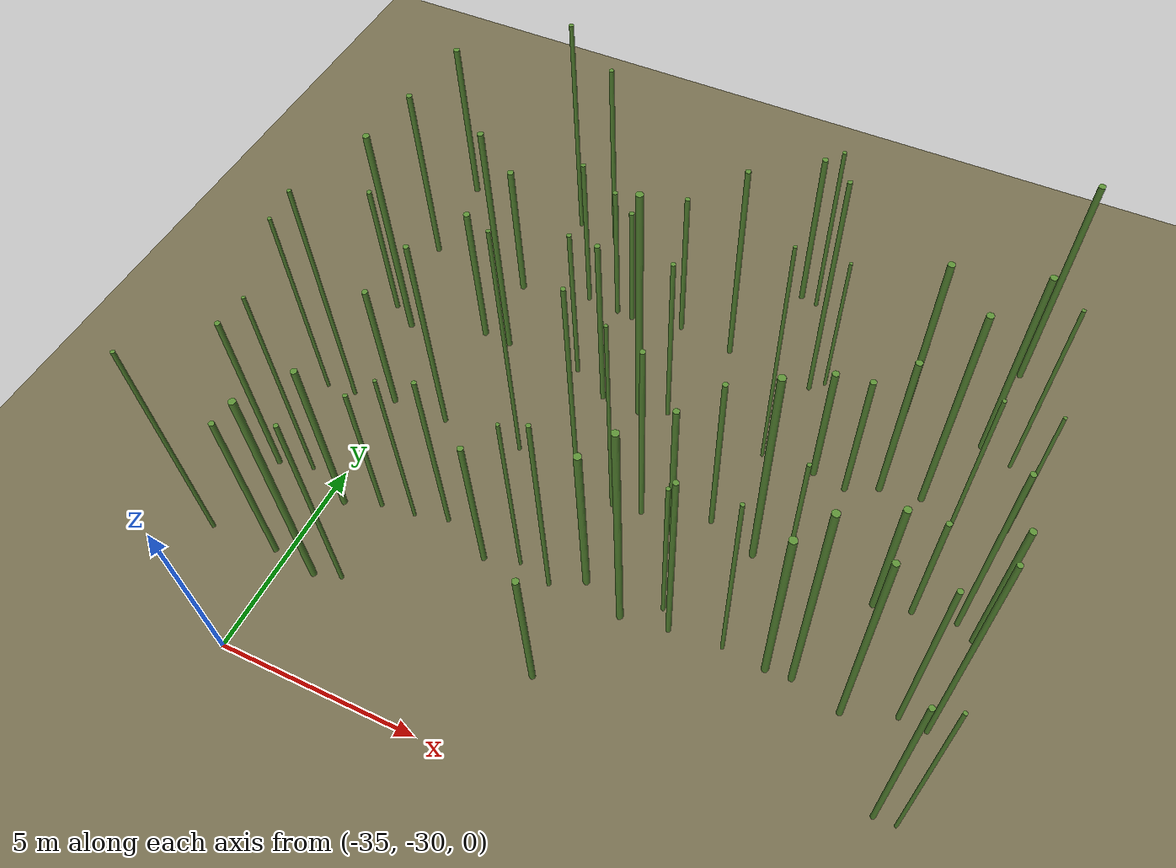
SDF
<sdf version="1.9">
 <world name="bamboo_field">
  <model name="ground_plane">
   <static>true</static>
   <link name="link">
    <collision name="collision">
     <geometry><plane><normal>0 0 1</normal><size>80.0 80.0</size></plane></geometry>
    </collision>
    <visual name="visual">
     <geometry><plane><normal>0 0 1</normal><size>80.0 80.0</size></plane></geometry>
     <material><diffuse>0.45 0.42 0.30 1</diffuse></material>
    </visual>
   </link>
  </model>
  <model name="bamboo_269">
   <static>true</static>
   <pose>-37.062735813474106 -27.58583185688729 3.381000521837051 0 0 0</pose>
   <link name="link">
    <collision name="collision">
     <geometry>
      <cylinder><radius>0.04757156290596727</radius><length>6.762001043674102</length></cylinder>
     </geometry>
    </collision>
    <visual name="visual">
     <geometry>
      <cylinder><radius>0.04757156290596727</radius><length>6.762001043674102</length></cylinder>
     </geometry>
     <material><diffuse>0.35 0.55 0.20 1</diffuse><specular>0.1 0.1 0.1 1</specular></material>
    </visual>
   </link>
  </model>
  <model name="bamboo_271">
   <static>true</static>
   <pose>-35.33054410957057 -27.489825555505444 2.6275051974756343 0 0 0</pose>
   <link name="link">
    <collision name="collision">
     <geometry>
      <cylinder><radius>0.06627385757000176</radius><length>5.2550103949512685</length></cylinder>
     </geometry>
    </collision>
    <visual name="visual">
     <geometry>
      <cylinder><radius>0.06627385757000176</radius><length>5.2550103949512685</length></cylinder>
     </geometry>
     <material><diffuse>0.35 0.55 0.20 1</diffuse><specular>0.1 0.1 0.1 1</specular></material>
    </visual>
   </link>
  </model>
  <model name="bamboo_272">
   <static>true</static>
   <pose>-34.16452462919833 -27.642993151131375 3.4418491226545855 0 0 0</pose>
   <link name="link">
    <collision name="collision">
     <geometry>
      <cylinder><radius>0.07859948920743703</radius><length>6.883698245309171</length></cylinder>
     </geometry>
    </collision>
    <visual name="visual">
     <geometry>
      <cylinder><radius>0.07859948920743703</radius><length>6.883698245309171</length></cylinder>
     </geometry>
     <material><diffuse>0.35 0.55 0.20 1</diffuse><specular>0.1 0.1 0.1 1</specular></material>
    </visual>
   </link>
  </model>
  <model name="bamboo_273">
   <static>true</static>
   <pose>-33.51340344057149 -27.447275028838853 3.1161733016148085 0 0 0</pose>
   <link name="link">
    <collision name="collision">
     <geometry>
      <cylinder><radius>0.05232595677636802</radius><length>6.232346603229617</length></cylinder>
     </geometry>
    </collision>
    <visual name="visual">
     <geometry>
      <cylinder><radius>0.05232595677636802</radius><length>6.232346603229617</length></cylinder>
     </geometry>
     <material><diffuse>0.35 0.55 0.20 1</diffuse><specular>0.1 0.1 0.1 1</specular></material>
    </visual>
   </link>
  </model>
  <model name="bamboo_278">
   <static>true</static>
   <pose>-28.35415856764586 -27.71753111915268 2.274545909601846 0 0 0</pose>
   <link name="link">
    <collision name="collision">
     <geometry>
      <cylinder><radius>0.07480856503234112</radius><length>4.549091819203692</length></cylinder>
     </geometry>
    </collision>
    <visual name="visual">
     <geometry>
      <cylinder><radius>0.07480856503234112</radius><length>4.549091819203692</length></cylinder>
     </geometry>
     <material><diffuse>0.35 0.55 0.20 1</diffuse><specular>0.1 0.1 0.1 1</specular></material>
    </visual>
   </link>
  </model>
  <model name="bamboo_283">
   <static>true</static>
   <pose>-20.586944837832704 -27.454820502093913 2.9907677946435154 0 0 0</pose>
   <link name="link">
    <collision name="collision">
     <geometry>
      <cylinder><radius>0.05984972871391498</radius><length>5.981535589287031</length></cylinder>
     </geometry>
    </collision>
    <visual name="visual">
     <geometry>
      <cylinder><radius>0.05984972871391498</radius><length>5.981535589287031</length></cylinder>
     </geometry>
     <material><diffuse>0.35 0.55 0.20 1</diffuse><specular>0.1 0.1 0.1 1</specular></material>
    </visual>
   </link>
  </model>
  <model name="bamboo_284">
   <static>true</static>
   <pose>-20.097044596477083 -27.440216746292545 3.1359237373289908 0 0 0</pose>
   <link name="link">
    <collision name="collision">
     <geometry>
      <cylinder><radius>0.04046335842400499</radius><length>6.2718474746579815</length></cylinder>
     </geometry>
    </collision>
    <visual name="visual">
     <geometry>
      <cylinder><radius>0.04046335842400499</radius><length>6.2718474746579815</length></cylinder>
     </geometry>
     <material><diffuse>0.35 0.55 0.20 1</diffuse><specular>0.1 0.1 0.1 1</specular></material>
    </visual>
   </link>
  </model>
  <model name="bamboo_343">
   <static>true</static>
   <pose>-36.69120000852049 -25.404731781519725 2.7116223954116956 0 0 0</pose>
   <link name="link">
    <collision name="collision">
     <geometry>
      <cylinder><radius>0.06453017280553966</radius><length>5.423244790823391</length></cylinder>
     </geometry>
    </collision>
    <visual name="visual">
     <geometry>
      <cylinder><radius>0.06453017280553966</radius><length>5.423244790823391</length></cylinder>
     </geometry>
     <material><diffuse>0.35 0.55 0.20 1</diffuse><specular>0.1 0.1 0.1 1</specular></material>
    </visual>
   </link>
  </model>
  <model name="bamboo_344">
   <static>true</static>
   <pose>-35.81948343510281 -25.20784937101254 3.2372317805197754 0 0 0</pose>
   <link name="link">
    <collision name="collision">
     <geometry>
      <cylinder><radius>0.044284705881836785</radius><length>6.474463561039551</length></cylinder>
     </geometry>
    </collision>
    <visual name="visual">
     <geometry>
      <cylinder><radius>0.044284705881836785</radius><length>6.474463561039551</length></cylinder>
     </geometry>
     <material><diffuse>0.35 0.55 0.20 1</diffuse><specular>0.1 0.1 0.1 1</specular></material>
    </visual>
   </link>
  </model>
  <model name="bamboo_345">
   <static>true</static>
   <pose>-34.58605034858615 -25.703388688228387 2.6333564573630723 0 0 0</pose>
   <link name="link">
    <collision name="collision">
     <geometry>
      <cylinder><radius>0.07698276444882973</radius><length>5.266712914726145</length></cylinder>
     </geometry>
    </collision>
    <visual name="visual">
     <geometry>
      <cylinder><radius>0.07698276444882973</radius><length>5.266712914726145</length></cylinder>
     </geometry>
     <material><diffuse>0.35 0.55 0.20 1</diffuse><specular>0.1 0.1 0.1 1</specular></material>
    </visual>
   </link>
  </model>
  <model name="bamboo_346">
   <static>true</static>
   <pose>-33.70615476046 -25.392834769972392 2.2650140089883988 0 0 0</pose>
   <link name="link">
    <collision name="collision">
     <geometry>
      <cylinder><radius>0.053488322161969325</radius><length>4.5300280179767975</length></cylinder>
     </geometry>
    </collision>
    <visual name="visual">
     <geometry>
      <cylinder><radius>0.053488322161969325</radius><length>4.5300280179767975</length></cylinder>
     </geometry>
     <material><diffuse>0.35 0.55 0.20 1</diffuse><specular>0.1 0.1 0.1 1</specular></material>
    </visual>
   </link>
  </model>
  <model name="bamboo_347">
   <static>true</static>
   <pose>-32.850288026364055 -25.288394685431417 2.7078285746905175 0 0 0</pose>
   <link name="link">
    <collision name="collision">
     <geometry>
      <cylinder><radius>0.04131309520066486</radius><length>5.415657149381035</length></cylinder>
     </geometry>
    </collision>
    <visual name="visual">
     <geometry>
      <cylinder><radius>0.04131309520066486</radius><length>5.415657149381035</length></cylinder>
     </geometry>
     <material><diffuse>0.35 0.55 0.20 1</diffuse><specular>0.1 0.1 0.1 1</specular></material>
    </visual>
   </link>
  </model>
  <model name="bamboo_348">
   <static>true</static>
   <pose>-32.02637121460703 -25.076230112487906 2.775599118756787 0 0 0</pose>
   <link name="link">
    <collision name="collision">
     <geometry>
      <cylinder><radius>0.05459236756481605</radius><length>5.551198237513574</length></cylinder>
     </geometry>
    </collision>
    <visual name="visual">
     <geometry>
      <cylinder><radius>0.05459236756481605</radius><length>5.551198237513574</length></cylinder>
     </geometry>
     <material><diffuse>0.35 0.55 0.20 1</diffuse><specular>0.1 0.1 0.1 1</specular></material>
    </visual>
   </link>
  </model>
  <model name="bamboo_349">
   <static>true</static>
   <pose>-30.757065430289536 -25.609837302615816 2.339165846784651 0 0 0</pose>
   <link name="link">
    <collision name="collision">
     <geometry>
      <cylinder><radius>0.06859802153747697</radius><length>4.678331693569302</length></cylinder>
     </geometry>
    </collision>
    <visual name="visual">
     <geometry>
      <cylinder><radius>0.06859802153747697</radius><length>4.678331693569302</length></cylinder>
     </geometry>
     <material><diffuse>0.35 0.55 0.20 1</diffuse><specular>0.1 0.1 0.1 1</specular></material>
    </visual>
   </link>
  </model>
  <model name="bamboo_350">
   <static>true</static>
   <pose>-29.908353702740865 -25.36806342413366 2.86935253852549 0 0 0</pose>
   <link name="link">
    <collision name="collision">
     <geometry>
      <cylinder><radius>0.04316335751384772</radius><length>5.73870507705098</length></cylinder>
     </geometry>
    </collision>
    <visual name="visual">
     <geometry>
      <cylinder><radius>0.04316335751384772</radius><length>5.73870507705098</length></cylinder>
     </geometry>
     <material><diffuse>0.35 0.55 0.20 1</diffuse><specular>0.1 0.1 0.1 1</specular></material>
    </visual>
   </link>
  </model>
  <model name="bamboo_351">
   <static>true</static>
   <pose>-29.056692317396212 -25.570141586471227 3.2500673755377893 0 0 0</pose>
   <link name="link">
    <collision name="collision">
     <geometry>
      <cylinder><radius>0.05232950341735015</radius><length>6.500134751075579</length></cylinder>
     </geometry>
    </collision>
    <visual name="visual">
     <geometry>
      <cylinder><radius>0.05232950341735015</radius><length>6.500134751075579</length></cylinder>
     </geometry>
     <material><diffuse>0.35 0.55 0.20 1</diffuse><specular>0.1 0.1 0.1 1</specular></material>
    </visual>
   </link>
  </model>
  <model name="bamboo_352">
   <static>true</static>
   <pose>-28.295433317478924 -25.14417182051724 2.664434430623254 0 0 0</pose>
   <link name="link">
    <collision name="collision">
     <geometry>
      <cylinder><radius>0.08744117311972825</radius><length>5.328868861246508</length></cylinder>
     </geometry>
    </collision>
    <visual name="visual">
     <geometry>
      <cylinder><radius>0.08744117311972825</radius><length>5.328868861246508</length></cylinder>
     </geometry>
     <material><diffuse>0.35 0.55 0.20 1</diffuse><specular>0.1 0.1 0.1 1</specular></material>
    </visual>
   </link>
  </model>
  <model name="bamboo_353">
   <static>true</static>
   <pose>-27.21579339892628 -25.611738213782623 3.7190169342016706 0 0 0</pose>
   <link name="link">
    <collision name="collision">
     <geometry>
      <cylinder><radius>0.08077377350015016</radius><length>7.438033868403341</length></cylinder>
     </geometry>
    </collision>
    <visual name="visual">
     <geometry>
      <cylinder><radius>0.08077377350015016</radius><length>7.438033868403341</length></cylinder>
     </geometry>
     <material><diffuse>0.35 0.55 0.20 1</diffuse><specular>0.1 0.1 0.1 1</specular></material>
    </visual>
   </link>
  </model>
  <model name="bamboo_354">
   <static>true</static>
   <pose>-26.394282864163113 -25.02891768866472 2.628366562390883 0 0 0</pose>
   <link name="link">
    <collision name="collision">
     <geometry>
      <cylinder><radius>0.050042574435103584</radius><length>5.256733124781766</length></cylinder>
     </geometry>
    </collision>
    <visual name="visual">
     <geometry>
      <cylinder><radius>0.050042574435103584</radius><length>5.256733124781766</length></cylinder>
     </geometry>
     <material><diffuse>0.35 0.55 0.20 1</diffuse><specular>0.1 0.1 0.1 1</specular></material>
    </visual>
   </link>
  </model>
  <model name="bamboo_355">
   <static>true</static>
   <pose>-26.083208831951044 -25.443786632260505 3.1517585632499214 0 0 0</pose>
   <link name="link">
    <collision name="collision">
     <geometry>
      <cylinder><radius>0.06455036564460512</radius><length>6.303517126499843</length></cylinder>
     </geometry>
    </collision>
    <visual name="visual">
     <geometry>
      <cylinder><radius>0.06455036564460512</radius><length>6.303517126499843</length></cylinder>
     </geometry>
     <material><diffuse>0.35 0.55 0.20 1</diffuse><specular>0.1 0.1 0.1 1</specular></material>
    </visual>
   </link>
  </model>
  <model name="bamboo_356">
   <static>true</static>
   <pose>-24.811749109549012 -25.325084984071832 3.127701017257572 0 0 0</pose>
   <link name="link">
    <collision name="collision">
     <geometry>
      <cylinder><radius>0.045694391180599904</radius><length>6.255402034515144</length></cylinder>
     </geometry>
    </collision>
    <visual name="visual">
     <geometry>
      <cylinder><radius>0.045694391180599904</radius><length>6.255402034515144</length></cylinder>
     </geometry>
     <material><diffuse>0.35 0.55 0.20 1</diffuse><specular>0.1 0.1 0.1 1</specular></material>
    </visual>
   </link>
  </model>
  <model name="bamboo_357">
   <static>true</static>
   <pose>-23.757766044393 -25.40010687587117 2.923244445666297 0 0 0</pose>
   <link name="link">
    <collision name="collision">
     <geometry>
      <cylinder><radius>0.0876502305743148</radius><length>5.846488891332594</length></cylinder>
     </geometry>
    </collision>
    <visual name="visual">
     <geometry>
      <cylinder><radius>0.0876502305743148</radius><length>5.846488891332594</length></cylinder>
     </geometry>
     <material><diffuse>0.35 0.55 0.20 1</diffuse><specular>0.1 0.1 0.1 1</specular></material>
    </visual>
   </link>
  </model>
  <model name="bamboo_358">
   <static>true</static>
   <pose>-23.1506913839067 -25.357513093185137 3.5913136719919088 0 0 0</pose>
   <link name="link">
    <collision name="collision">
     <geometry>
      <cylinder><radius>0.08094827840022292</radius><length>7.1826273439838175</length></cylinder>
     </geometry>
    </collision>
    <visual name="visual">
     <geometry>
      <cylinder><radius>0.08094827840022292</radius><length>7.1826273439838175</length></cylinder>
     </geometry>
     <material><diffuse>0.35 0.55 0.20 1</diffuse><specular>0.1 0.1 0.1 1</specular></material>
    </visual>
   </link>
  </model>
  <model name="bamboo_359">
   <static>true</static>
   <pose>-21.93140234696262 -25.655249748979806 3.4304727825988524 0 0 0</pose>
   <link name="link">
    <collision name="collision">
     <geometry>
      <cylinder><radius>0.07293314842661591</radius><length>6.860945565197705</length></cylinder>
     </geometry>
    </collision>
    <visual name="visual">
     <geometry>
      <cylinder><radius>0.07293314842661591</radius><length>6.860945565197705</length></cylinder>
     </geometry>
     <material><diffuse>0.35 0.55 0.20 1</diffuse><specular>0.1 0.1 0.1 1</specular></material>
    </visual>
   </link>
  </model>
  <model name="bamboo_360">
   <static>true</static>
   <pose>-20.743201306307068 -25.222829137758733 3.013225286059018 0 0 0</pose>
   <link name="link">
    <collision name="collision">
     <geometry>
      <cylinder><radius>0.06004025486646868</radius><length>6.026450572118036</length></cylinder>
     </geometry>
    </collision>
    <visual name="visual">
     <geometry>
      <cylinder><radius>0.06004025486646868</radius><length>6.026450572118036</length></cylinder>
     </geometry>
     <material><diffuse>0.35 0.55 0.20 1</diffuse><specular>0.1 0.1 0.1 1</specular></material>
    </visual>
   </link>
  </model>
  <model name="bamboo_361">
   <static>true</static>
   <pose>-20.094183563869674 -25.26029908697982 3.7910030307217983 0 0 0</pose>
   <link name="link">
    <collision name="collision">
     <geometry>
      <cylinder><radius>0.057976474650812994</radius><length>7.582006061443597</length></cylinder>
     </geometry>
    </collision>
    <visual name="visual">
     <geometry>
      <cylinder><radius>0.057976474650812994</radius><length>7.582006061443597</length></cylinder>
     </geometry>
     <material><diffuse>0.35 0.55 0.20 1</diffuse><specular>0.1 0.1 0.1 1</specular></material>
    </visual>
   </link>
  </model>
  <model name="bamboo_412">
   <static>true</static>
   <pose>-36.91876706103328 -22.898484576971686 3.0731296321400308 0 0 0</pose>
   <link name="link">
    <collision name="collision">
     <geometry>
      <cylinder><radius>0.044121390596232296</radius><length>6.1462592642800615</length></cylinder>
     </geometry>
    </collision>
    <visual name="visual">
     <geometry>
      <cylinder><radius>0.044121390596232296</radius><length>6.1462592642800615</length></cylinder>
     </geometry>
     <material><diffuse>0.35 0.55 0.20 1</diffuse><specular>0.1 0.1 0.1 1</specular></material>
    </visual>
   </link>
  </model>
  <model name="bamboo_413">
   <static>true</static>
   <pose>-36.15056412473072 -22.819199939908035 3.6161201619413066 0 0 0</pose>
   <link name="link">
    <collision name="collision">
     <geometry>
      <cylinder><radius>0.05015987469789139</radius><length>7.232240323882613</length></cylinder>
     </geometry>
    </collision>
    <visual name="visual">
     <geometry>
      <cylinder><radius>0.05015987469789139</radius><length>7.232240323882613</length></cylinder>
     </geometry>
     <material><diffuse>0.35 0.55 0.20 1</diffuse><specular>0.1 0.1 0.1 1</specular></material>
    </visual>
   </link>
  </model>
  <model name="bamboo_414">
   <static>true</static>
   <pose>-35.083246429688195 -22.5817411277838 2.13223016724243 0 0 0</pose>
   <link name="link">
    <collision name="collision">
     <geometry>
      <cylinder><radius>0.07405278423546052</radius><length>4.26446033448486</length></cylinder>
     </geometry>
    </collision>
    <visual name="visual">
     <geometry>
      <cylinder><radius>0.07405278423546052</radius><length>4.26446033448486</length></cylinder>
     </geometry>
     <material><diffuse>0.35 0.55 0.20 1</diffuse><specular>0.1 0.1 0.1 1</specular></material>
    </visual>
   </link>
  </model>
  <model name="bamboo_415">
   <static>true</static>
   <pose>-33.58274413668766 -22.57352653564559 3.217664808854887 0 0 0</pose>
   <link name="link">
    <collision name="collision">
     <geometry>
      <cylinder><radius>0.06266859211485713</radius><length>6.435329617709774</length></cylinder>
     </geometry>
    </collision>
    <visual name="visual">
     <geometry>
      <cylinder><radius>0.06266859211485713</radius><length>6.435329617709774</length></cylinder>
     </geometry>
     <material><diffuse>0.35 0.55 0.20 1</diffuse><specular>0.1 0.1 0.1 1</specular></material>
    </visual>
   </link>
  </model>
  <model name="bamboo_416">
   <static>true</static>
   <pose>-31.453719912548333 -22.544621020905257 3.9060324035093954 0 0 0</pose>
   <link name="link">
    <collision name="collision">
     <geometry>
      <cylinder><radius>0.04819163154677038</radius><length>7.812064807018791</length></cylinder>
     </geometry>
    </collision>
    <visual name="visual">
     <geometry>
      <cylinder><radius>0.04819163154677038</radius><length>7.812064807018791</length></cylinder>
     </geometry>
     <material><diffuse>0.35 0.55 0.20 1</diffuse><specular>0.1 0.1 0.1 1</specular></material>
    </visual>
   </link>
  </model>
  <model name="bamboo_417">
   <static>true</static>
   <pose>-29.540744012885646 -23.072162616164917 3.772829519481312 0 0 0</pose>
   <link name="link">
    <collision name="collision">
     <geometry>
      <cylinder><radius>0.05343822432046228</radius><length>7.545659038962624</length></cylinder>
     </geometry>
    </collision>
    <visual name="visual">
     <geometry>
      <cylinder><radius>0.05343822432046228</radius><length>7.545659038962624</length></cylinder>
     </geometry>
     <material><diffuse>0.35 0.55 0.20 1</diffuse><specular>0.1 0.1 0.1 1</specular></material>
    </visual>
   </link>
  </model>
  <model name="bamboo_418">
   <static>true</static>
   <pose>-28.65424590526551 -23.038762970085408 3.4246464964009906 0 0 0</pose>
   <link name="link">
    <collision name="collision">
     <geometry>
      <cylinder><radius>0.0431935994561574</radius><length>6.849292992801981</length></cylinder>
     </geometry>
    </collision>
    <visual name="visual">
     <geometry>
      <cylinder><radius>0.0431935994561574</radius><length>6.849292992801981</length></cylinder>
     </geometry>
     <material><diffuse>0.35 0.55 0.20 1</diffuse><specular>0.1 0.1 0.1 1</specular></material>
    </visual>
   </link>
  </model>
  <model name="bamboo_419">
   <static>true</static>
   <pose>-27.918441521993895 -22.914130735258524 3.1337722564768997 0 0 0</pose>
   <link name="link">
    <collision name="collision">
     <geometry>
      <cylinder><radius>0.06498050028806916</radius><length>6.267544512953799</length></cylinder>
     </geometry>
    </collision>
    <visual name="visual">
     <geometry>
      <cylinder><radius>0.06498050028806916</radius><length>6.267544512953799</length></cylinder>
     </geometry>
     <material><diffuse>0.35 0.55 0.20 1</diffuse><specular>0.1 0.1 0.1 1</specular></material>
    </visual>
   </link>
  </model>
  <model name="bamboo_420">
   <static>true</static>
   <pose>-27.078483581047465 -23.061885456901912 2.456808846306502 0 0 0</pose>
   <link name="link">
    <collision name="collision">
     <geometry>
      <cylinder><radius>0.07613891866629333</radius><length>4.913617692613004</length></cylinder>
     </geometry>
    </collision>
    <visual name="visual">
     <geometry>
      <cylinder><radius>0.07613891866629333</radius><length>4.913617692613004</length></cylinder>
     </geometry>
     <material><diffuse>0.35 0.55 0.20 1</diffuse><specular>0.1 0.1 0.1 1</specular></material>
    </visual>
   </link>
  </model>
  <model name="bamboo_421">
   <static>true</static>
   <pose>-26.28443033475507 -22.44089993797585 2.765958948734798 0 0 0</pose>
   <link name="link">
    <collision name="collision">
     <geometry>
      <cylinder><radius>0.0635882294788869</radius><length>5.531917897469596</length></cylinder>
     </geometry>
    </collision>
    <visual name="visual">
     <geometry>
      <cylinder><radius>0.0635882294788869</radius><length>5.531917897469596</length></cylinder>
     </geometry>
     <material><diffuse>0.35 0.55 0.20 1</diffuse><specular>0.1 0.1 0.1 1</specular></material>
    </visual>
   </link>
  </model>
  <model name="bamboo_422">
   <static>true</static>
   <pose>-25.052937010370727 -22.867450581855437 3.481331656213154 0 0 0</pose>
   <link name="link">
    <collision name="collision">
     <geometry>
      <cylinder><radius>0.08569738347605645</radius><length>6.962663312426308</length></cylinder>
     </geometry>
    </collision>
    <visual name="visual">
     <geometry>
      <cylinder><radius>0.08569738347605645</radius><length>6.962663312426308</length></cylinder>
     </geometry>
     <material><diffuse>0.35 0.55 0.20 1</diffuse><specular>0.1 0.1 0.1 1</specular></material>
    </visual>
   </link>
  </model>
  <model name="bamboo_423">
   <static>true</static>
   <pose>-24.219027167307654 -22.741283332194172 2.1557741399338237 0 0 0</pose>
   <link name="link">
    <collision name="collision">
     <geometry>
      <cylinder><radius>0.05356289790049083</radius><length>4.311548279867647</length></cylinder>
     </geometry>
    </collision>
    <visual name="visual">
     <geometry>
      <cylinder><radius>0.05356289790049083</radius><length>4.311548279867647</length></cylinder>
     </geometry>
     <material><diffuse>0.35 0.55 0.20 1</diffuse><specular>0.1 0.1 0.1 1</specular></material>
    </visual>
   </link>
  </model>
  <model name="bamboo_424">
   <static>true</static>
   <pose>-22.071915347995528 -22.895097182551247 2.13785287554549 0 0 0</pose>
   <link name="link">
    <collision name="collision">
     <geometry>
      <cylinder><radius>0.08770397037302138</radius><length>4.27570575109098</length></cylinder>
     </geometry>
    </collision>
    <visual name="visual">
     <geometry>
      <cylinder><radius>0.08770397037302138</radius><length>4.27570575109098</length></cylinder>
     </geometry>
     <material><diffuse>0.35 0.55 0.20 1</diffuse><specular>0.1 0.1 0.1 1</specular></material>
    </visual>
   </link>
  </model>
  <model name="bamboo_425">
   <static>true</static>
   <pose>-21.219072863415747 -22.698047273408946 2.0159383471149113 0 0 0</pose>
   <link name="link">
    <collision name="collision">
     <geometry>
      <cylinder><radius>0.06765456976620338</radius><length>4.0318766942298225</length></cylinder>
     </geometry>
    </collision>
    <visual name="visual">
     <geometry>
      <cylinder><radius>0.06765456976620338</radius><length>4.0318766942298225</length></cylinder>
     </geometry>
     <material><diffuse>0.35 0.55 0.20 1</diffuse><specular>0.1 0.1 0.1 1</specular></material>
    </visual>
   </link>
  </model>
  <model name="bamboo_426">
   <static>true</static>
   <pose>-20.192626474827165 -22.551882707920512 3.183381869969632 0 0 0</pose>
   <link name="link">
    <collision name="collision">
     <geometry>
      <cylinder><radius>0.06319633452902496</radius><length>6.366763739939264</length></cylinder>
     </geometry>
    </collision>
    <visual name="visual">
     <geometry>
      <cylinder><radius>0.06319633452902496</radius><length>6.366763739939264</length></cylinder>
     </geometry>
     <material><diffuse>0.35 0.55 0.20 1</diffuse><specular>0.1 0.1 0.1 1</specular></material>
    </visual>
   </link>
  </model>
  <model name="bamboo_427">
   <static>true</static>
   <pose>-19.75534546045019 -22.805686715289664 2.4902537487531657 0 0 0</pose>
   <link name="link">
    <collision name="collision">
     <geometry>
      <cylinder><radius>0.07802411101608484</radius><length>4.9805074975063315</length></cylinder>
     </geometry>
    </collision>
    <visual name="visual">
     <geometry>
      <cylinder><radius>0.07802411101608484</radius><length>4.9805074975063315</length></cylinder>
     </geometry>
     <material><diffuse>0.35 0.55 0.20 1</diffuse><specular>0.1 0.1 0.1 1</specular></material>
    </visual>
   </link>
  </model>
  <model name="bamboo_478">
   <static>true</static>
   <pose>-36.71805595906259 -19.825047679374077 2.1579100995481664 0 0 0</pose>
   <link name="link">
    <collision name="collision">
     <geometry>
      <cylinder><radius>0.06381311405407343</radius><length>4.315820199096333</length></cylinder>
     </geometry>
    </collision>
    <visual name="visual">
     <geometry>
      <cylinder><radius>0.06381311405407343</radius><length>4.315820199096333</length></cylinder>
     </geometry>
     <material><diffuse>0.35 0.55 0.20 1</diffuse><specular>0.1 0.1 0.1 1</specular></material>
    </visual>
   </link>
  </model>
  <model name="bamboo_479">
   <static>true</static>
   <pose>-36.01496823182924 -20.240864356436525 3.3550697711520607 0 0 0</pose>
   <link name="link">
    <collision name="collision">
     <geometry>
      <cylinder><radius>0.08002251683603429</radius><length>6.7101395423041215</length></cylinder>
     </geometry>
    </collision>
    <visual name="visual">
     <geometry>
      <cylinder><radius>0.08002251683603429</radius><length>6.7101395423041215</length></cylinder>
     </geometry>
     <material><diffuse>0.35 0.55 0.20 1</diffuse><specular>0.1 0.1 0.1 1</specular></material>
    </visual>
   </link>
  </model>
  <model name="bamboo_480">
   <static>true</static>
   <pose>-34.05617428399751 -19.633265713329486 2.2523719972770797 0 0 0</pose>
   <link name="link">
    <collision name="collision">
     <geometry>
      <cylinder><radius>0.08042303606596815</radius><length>4.504743994554159</length></cylinder>
     </geometry>
    </collision>
    <visual name="visual">
     <geometry>
      <cylinder><radius>0.08042303606596815</radius><length>4.504743994554159</length></cylinder>
     </geometry>
     <material><diffuse>0.35 0.55 0.20 1</diffuse><specular>0.1 0.1 0.1 1</specular></material>
    </visual>
   </link>
  </model>
  <model name="bamboo_481">
   <static>true</static>
   <pose>-33.29785896331398 -19.687498528753213 3.6682162373520084 0 0 0</pose>
   <link name="link">
    <collision name="collision">
     <geometry>
      <cylinder><radius>0.07136131061161989</radius><length>7.336432474704017</length></cylinder>
     </geometry>
    </collision>
    <visual name="visual">
     <geometry>
      <cylinder><radius>0.07136131061161989</radius><length>7.336432474704017</length></cylinder>
     </geometry>
     <material><diffuse>0.35 0.55 0.20 1</diffuse><specular>0.1 0.1 0.1 1</specular></material>
    </visual>
   </link>
  </model>
  <model name="bamboo_482">
   <static>true</static>
   <pose>-31.23676015255426 -19.713635291404398 2.552401639814499 0 0 0</pose>
   <link name="link">
    <collision name="collision">
     <geometry>
      <cylinder><radius>0.0563063402684868</radius><length>5.104803279628998</length></cylinder>
     </geometry>
    </collision>
    <visual name="visual">
     <geometry>
      <cylinder><radius>0.0563063402684868</radius><length>5.104803279628998</length></cylinder>
     </geometry>
     <material><diffuse>0.35 0.55 0.20 1</diffuse><specular>0.1 0.1 0.1 1</specular></material>
    </visual>
   </link>
  </model>
  <model name="bamboo_483">
   <static>true</static>
   <pose>-30.252740244670697 -20.221321849859915 2.8391876684504576 0 0 0</pose>
   <link name="link">
    <collision name="collision">
     <geometry>
      <cylinder><radius>0.06612810052249046</radius><length>5.678375336900915</length></cylinder>
     </geometry>
    </collision>
    <visual name="visual">
     <geometry>
      <cylinder><radius>0.06612810052249046</radius><length>5.678375336900915</length></cylinder>
     </geometry>
     <material><diffuse>0.35 0.55 0.20 1</diffuse><specular>0.1 0.1 0.1 1</specular></material>
    </visual>
   </link>
  </model>
  <model name="bamboo_484">
   <static>true</static>
   <pose>-29.2137976388623 -20.254368358787513 3.849856333518547 0 0 0</pose>
   <link name="link">
    <collision name="collision">
     <geometry>
      <cylinder><radius>0.08698249924935549</radius><length>7.699712667037094</length></cylinder>
     </geometry>
    </collision>
    <visual name="visual">
     <geometry>
      <cylinder><radius>0.08698249924935549</radius><length>7.699712667037094</length></cylinder>
     </geometry>
     <material><diffuse>0.35 0.55 0.20 1</diffuse><specular>0.1 0.1 0.1 1</specular></material>
    </visual>
   </link>
  </model>
  <model name="bamboo_485">
   <static>true</static>
   <pose>-28.52510869786294 -19.985152314164896 2.8217800745984407 0 0 0</pose>
   <link name="link">
    <collision name="collision">
     <geometry>
      <cylinder><radius>0.057193458928873224</radius><length>5.643560149196881</length></cylinder>
     </geometry>
    </collision>
    <visual name="visual">
     <geometry>
      <cylinder><radius>0.057193458928873224</radius><length>5.643560149196881</length></cylinder>
     </geometry>
     <material><diffuse>0.35 0.55 0.20 1</diffuse><specular>0.1 0.1 0.1 1</specular></material>
    </visual>
   </link>
  </model>
  <model name="bamboo_486">
   <static>true</static>
   <pose>-25.863980652633764 -20.158756163023913 3.779148427828515 0 0 0</pose>
   <link name="link">
    <collision name="collision">
     <geometry>
      <cylinder><radius>0.04193912662408975</radius><length>7.55829685565703</length></cylinder>
     </geometry>
    </collision>
    <visual name="visual">
     <geometry>
      <cylinder><radius>0.04193912662408975</radius><length>7.55829685565703</length></cylinder>
     </geometry>
     <material><diffuse>0.35 0.55 0.20 1</diffuse><specular>0.1 0.1 0.1 1</specular></material>
    </visual>
   </link>
  </model>
  <model name="bamboo_487">
   <static>true</static>
   <pose>-24.525556429998403 -20.11292320135166 2.0404657771865438 0 0 0</pose>
   <link name="link">
    <collision name="collision">
     <geometry>
      <cylinder><radius>0.08485156810747113</radius><length>4.0809315543730875</length></cylinder>
     </geometry>
    </collision>
    <visual name="visual">
     <geometry>
      <cylinder><radius>0.08485156810747113</radius><length>4.0809315543730875</length></cylinder>
     </geometry>
     <material><diffuse>0.35 0.55 0.20 1</diffuse><specular>0.1 0.1 0.1 1</specular></material>
    </visual>
   </link>
  </model>
  <model name="bamboo_488">
   <static>true</static>
   <pose>-23.677357898868802 -20.23099180408742 2.1964347805454825 0 0 0</pose>
   <link name="link">
    <collision name="collision">
     <geometry>
      <cylinder><radius>0.07480914223374874</radius><length>4.392869561090965</length></cylinder>
     </geometry>
    </collision>
    <visual name="visual">
     <geometry>
      <cylinder><radius>0.07480914223374874</radius><length>4.392869561090965</length></cylinder>
     </geometry>
     <material><diffuse>0.35 0.55 0.20 1</diffuse><specular>0.1 0.1 0.1 1</specular></material>
    </visual>
   </link>
  </model>
  <model name="bamboo_489">
   <static>true</static>
   <pose>-22.90415923720315 -19.873173300765977 2.5388399620175273 0 0 0</pose>
   <link name="link">
    <collision name="collision">
     <geometry>
      <cylinder><radius>0.08129116658898752</radius><length>5.0776799240350545</length></cylinder>
     </geometry>
    </collision>
    <visual name="visual">
     <geometry>
      <cylinder><radius>0.08129116658898752</radius><length>5.0776799240350545</length></cylinder>
     </geometry>
     <material><diffuse>0.35 0.55 0.20 1</diffuse><specular>0.1 0.1 0.1 1</specular></material>
    </visual>
   </link>
  </model>
  <model name="bamboo_490">
   <static>true</static>
   <pose>-21.889080563581494 -19.71802938938017 3.481889597840016 0 0 0</pose>
   <link name="link">
    <collision name="collision">
     <geometry>
      <cylinder><radius>0.08119847171275704</radius><length>6.963779195680032</length></cylinder>
     </geometry>
    </collision>
    <visual name="visual">
     <geometry>
      <cylinder><radius>0.08119847171275704</radius><length>6.963779195680032</length></cylinder>
     </geometry>
     <material><diffuse>0.35 0.55 0.20 1</diffuse><specular>0.1 0.1 0.1 1</specular></material>
    </visual>
   </link>
  </model>
  <model name="bamboo_491">
   <static>true</static>
   <pose>-21.0375622206149 -20.230106794053384 2.6222461865778177 0 0 0</pose>
   <link name="link">
    <collision name="collision">
     <geometry>
      <cylinder><radius>0.047948622131950024</radius><length>5.244492373155635</length></cylinder>
     </geometry>
    </collision>
    <visual name="visual">
     <geometry>
      <cylinder><radius>0.047948622131950024</radius><length>5.244492373155635</length></cylinder>
     </geometry>
     <material><diffuse>0.35 0.55 0.20 1</diffuse><specular>0.1 0.1 0.1 1</specular></material>
    </visual>
   </link>
  </model>
  <model name="bamboo_492">
   <static>true</static>
   <pose>-19.768749823732026 -19.739177994439242 2.3855268936631164 0 0 0</pose>
   <link name="link">
    <collision name="collision">
     <geometry>
      <cylinder><radius>0.041447407966009285</radius><length>4.771053787326233</length></cylinder>
     </geometry>
    </collision>
    <visual name="visual">
     <geometry>
      <cylinder><radius>0.041447407966009285</radius><length>4.771053787326233</length></cylinder>
     </geometry>
     <material><diffuse>0.35 0.55 0.20 1</diffuse><specular>0.1 0.1 0.1 1</specular></material>
    </visual>
   </link>
  </model>
  <model name="bamboo_538">
   <static>true</static>
   <pose>-36.76267688513915 -17.518190659983187 2.769753234813429 0 0 0</pose>
   <link name="link">
    <collision name="collision">
     <geometry>
      <cylinder><radius>0.07381477841787207</radius><length>5.539506469626858</length></cylinder>
     </geometry>
    </collision>
    <visual name="visual">
     <geometry>
      <cylinder><radius>0.07381477841787207</radius><length>5.539506469626858</length></cylinder>
     </geometry>
     <material><diffuse>0.35 0.55 0.20 1</diffuse><specular>0.1 0.1 0.1 1</specular></material>
    </visual>
   </link>
  </model>
  <model name="bamboo_539">
   <static>true</static>
   <pose>-33.9138320607612 -17.740407353986658 2.1497304849539693 0 0 0</pose>
   <link name="link">
    <collision name="collision">
     <geometry>
      <cylinder><radius>0.08347078173063839</radius><length>4.299460969907939</length></cylinder>
     </geometry>
    </collision>
    <visual name="visual">
     <geometry>
      <cylinder><radius>0.08347078173063839</radius><length>4.299460969907939</length></cylinder>
     </geometry>
     <material><diffuse>0.35 0.55 0.20 1</diffuse><specular>0.1 0.1 0.1 1</specular></material>
    </visual>
   </link>
  </model>
  <model name="bamboo_540">
   <static>true</static>
   <pose>-32.05947878845764 -17.348148724266014 2.4699999999825746 0 0 0</pose>
   <link name="link">
    <collision name="collision">
     <geometry>
      <cylinder><radius>0.06016384967308614</radius><length>4.939999999965149</length></cylinder>
     </geometry>
    </collision>
    <visual name="visual">
     <geometry>
      <cylinder><radius>0.06016384967308614</radius><length>4.939999999965149</length></cylinder>
     </geometry>
     <material><diffuse>0.35 0.55 0.20 1</diffuse><specular>0.1 0.1 0.1 1</specular></material>
    </visual>
   </link>
  </model>
  <model name="bamboo_541">
   <static>true</static>
   <pose>-31.153444226868704 -17.45167052347786 2.237413704107266 0 0 0</pose>
   <link name="link">
    <collision name="collision">
     <geometry>
      <cylinder><radius>0.0623534059956899</radius><length>4.474827408214532</length></cylinder>
     </geometry>
    </collision>
    <visual name="visual">
     <geometry>
      <cylinder><radius>0.0623534059956899</radius><length>4.474827408214532</length></cylinder>
     </geometry>
     <material><diffuse>0.35 0.55 0.20 1</diffuse><specular>0.1 0.1 0.1 1</specular></material>
    </visual>
   </link>
  </model>
  <model name="bamboo_542">
   <static>true</static>
   <pose>-30.69692135908512 -17.48608933243146 2.000339430956673 0 0 0</pose>
   <link name="link">
    <collision name="collision">
     <geometry>
      <cylinder><radius>0.06785655057024165</radius><length>4.000678861913346</length></cylinder>
     </geometry>
    </collision>
    <visual name="visual">
     <geometry>
      <cylinder><radius>0.06785655057024165</radius><length>4.000678861913346</length></cylinder>
     </geometry>
     <material><diffuse>0.35 0.55 0.20 1</diffuse><specular>0.1 0.1 0.1 1</specular></material>
    </visual>
   </link>
  </model>
  <model name="bamboo_543">
   <static>true</static>
   <pose>-29.34288972087923 -17.243783034679364 2.4137024976997967 0 0 0</pose>
   <link name="link">
    <collision name="collision">
     <geometry>
      <cylinder><radius>0.06541688701597324</radius><length>4.8274049953995934</length></cylinder>
     </geometry>
    </collision>
    <visual name="visual">
     <geometry>
      <cylinder><radius>0.06541688701597324</radius><length>4.8274049953995934</length></cylinder>
     </geometry>
     <material><diffuse>0.35 0.55 0.20 1</diffuse><specular>0.1 0.1 0.1 1</specular></material>
    </visual>
   </link>
  </model>
  <model name="bamboo_544">
   <static>true</static>
   <pose>-27.847223966872676 -17.44901458117292 3.2395159393541686 0 0 0</pose>
   <link name="link">
    <collision name="collision">
     <geometry>
      <cylinder><radius>0.06800754225530341</radius><length>6.479031878708337</length></cylinder>
     </geometry>
    </collision>
    <visual name="visual">
     <geometry>
      <cylinder><radius>0.06800754225530341</radius><length>6.479031878708337</length></cylinder>
     </geometry>
     <material><diffuse>0.35 0.55 0.20 1</diffuse><specular>0.1 0.1 0.1 1</specular></material>
    </visual>
   </link>
  </model>
  <model name="bamboo_545">
   <static>true</static>
   <pose>-25.513220584675242 -17.704643131008922 3.659767771268802 0 0 0</pose>
   <link name="link">
    <collision name="collision">
     <geometry>
      <cylinder><radius>0.05706785572884193</radius><length>7.319535542537604</length></cylinder>
     </geometry>
    </collision>
    <visual name="visual">
     <geometry>
      <cylinder><radius>0.05706785572884193</radius><length>7.319535542537604</length></cylinder>
     </geometry>
     <material><diffuse>0.35 0.55 0.20 1</diffuse><specular>0.1 0.1 0.1 1</specular></material>
    </visual>
   </link>
  </model>
  <model name="bamboo_546">
   <static>true</static>
   <pose>-25.18121569732605 -17.407232346821203 2.3283107354107817 0 0 0</pose>
   <link name="link">
    <collision name="collision">
     <geometry>
      <cylinder><radius>0.042288905492751716</radius><length>4.656621470821563</length></cylinder>
     </geometry>
    </collision>
    <visual name="visual">
     <geometry>
      <cylinder><radius>0.042288905492751716</radius><length>4.656621470821563</length></cylinder>
     </geometry>
     <material><diffuse>0.35 0.55 0.20 1</diffuse><specular>0.1 0.1 0.1 1</specular></material>
    </visual>
   </link>
  </model>
  <model name="bamboo_547">
   <static>true</static>
   <pose>-23.02663357801053 -17.36203734312059 2.785792979830347 0 0 0</pose>
   <link name="link">
    <collision name="collision">
     <geometry>
      <cylinder><radius>0.08651081295765727</radius><length>5.571585959660694</length></cylinder>
     </geometry>
    </collision>
    <visual name="visual">
     <geometry>
      <cylinder><radius>0.08651081295765727</radius><length>5.571585959660694</length></cylinder>
     </geometry>
     <material><diffuse>0.35 0.55 0.20 1</diffuse><specular>0.1 0.1 0.1 1</specular></material>
    </visual>
   </link>
  </model>
  <model name="bamboo_548">
   <static>true</static>
   <pose>-20.953560858430496 -17.593678407803445 3.177622215795803 0 0 0</pose>
   <link name="link">
    <collision name="collision">
     <geometry>
      <cylinder><radius>0.08187331187432324</radius><length>6.355244431591606</length></cylinder>
     </geometry>
    </collision>
    <visual name="visual">
     <geometry>
      <cylinder><radius>0.08187331187432324</radius><length>6.355244431591606</length></cylinder>
     </geometry>
     <material><diffuse>0.35 0.55 0.20 1</diffuse><specular>0.1 0.1 0.1 1</specular></material>
    </visual>
   </link>
  </model>
  <model name="bamboo_549">
   <static>true</static>
   <pose>-20.159424758713115 -17.875031501732387 2.9976572842052223 0 0 0</pose>
   <link name="link">
    <collision name="collision">
     <geometry>
      <cylinder><radius>0.04673180072153164</radius><length>5.9953145684104445</length></cylinder>
     </geometry>
    </collision>
    <visual name="visual">
     <geometry>
      <cylinder><radius>0.04673180072153164</radius><length>5.9953145684104445</length></cylinder>
     </geometry>
     <material><diffuse>0.35 0.55 0.20 1</diffuse><specular>0.1 0.1 0.1 1</specular></material>
    </visual>
   </link>
  </model>
  <model name="bamboo_605">
   <static>true</static>
   <pose>-36.96895495653814 -14.946858275027358 2.526632138768307 0 0 0</pose>
   <link name="link">
    <collision name="collision">
     <geometry>
      <cylinder><radius>0.08174361331086967</radius><length>5.053264277536614</length></cylinder>
     </geometry>
    </collision>
    <visual name="visual">
     <geometry>
      <cylinder><radius>0.08174361331086967</radius><length>5.053264277536614</length></cylinder>
     </geometry>
     <material><diffuse>0.35 0.55 0.20 1</diffuse><specular>0.1 0.1 0.1 1</specular></material>
    </visual>
   </link>
  </model>
  <model name="bamboo_609">
   <static>true</static>
   <pose>-33.51651051442266 -14.907310713720346 3.434605416908191 0 0 0</pose>
   <link name="link">
    <collision name="collision">
     <geometry>
      <cylinder><radius>0.058111147210754555</radius><length>6.869210833816382</length></cylinder>
     </geometry>
    </collision>
    <visual name="visual">
     <geometry>
      <cylinder><radius>0.058111147210754555</radius><length>6.869210833816382</length></cylinder>
     </geometry>
     <material><diffuse>0.35 0.55 0.20 1</diffuse><specular>0.1 0.1 0.1 1</specular></material>
    </visual>
   </link>
  </model>
  <model name="bamboo_610">
   <static>true</static>
   <pose>-32.42737985291372 -14.955680764636035 2.9576292854401642 0 0 0</pose>
   <link name="link">
    <collision name="collision">
     <geometry>
      <cylinder><radius>0.0640758324694743</radius><length>5.9152585708803285</length></cylinder>
     </geometry>
    </collision>
    <visual name="visual">
     <geometry>
      <cylinder><radius>0.0640758324694743</radius><length>5.9152585708803285</length></cylinder>
     </geometry>
     <material><diffuse>0.35 0.55 0.20 1</diffuse><specular>0.1 0.1 0.1 1</specular></material>
    </visual>
   </link>
  </model>
  <model name="bamboo_615">
   <static>true</static>
   <pose>-26.7622337114489 -14.828683254347641 2.5290413970905794 0 0 0</pose>
   <link name="link">
    <collision name="collision">
     <geometry>
      <cylinder><radius>0.07298243750289266</radius><length>5.058082794181159</length></cylinder>
     </geometry>
    </collision>
    <visual name="visual">
     <geometry>
      <cylinder><radius>0.07298243750289266</radius><length>5.058082794181159</length></cylinder>
     </geometry>
     <material><diffuse>0.35 0.55 0.20 1</diffuse><specular>0.1 0.1 0.1 1</specular></material>
    </visual>
   </link>
  </model>
  <model name="bamboo_616">
   <static>true</static>
   <pose>-26.311777332316233 -14.92690916217815 2.770923765483695 0 0 0</pose>
   <link name="link">
    <collision name="collision">
     <geometry>
      <cylinder><radius>0.05149068935893899</radius><length>5.54184753096739</length></cylinder>
     </geometry>
    </collision>
    <visual name="visual">
     <geometry>
      <cylinder><radius>0.05149068935893899</radius><length>5.54184753096739</length></cylinder>
     </geometry>
     <material><diffuse>0.35 0.55 0.20 1</diffuse><specular>0.1 0.1 0.1 1</specular></material>
    </visual>
   </link>
  </model>
  <model name="bamboo_621">
   <static>true</static>
   <pose>-20.632088078420747 -14.974834972602652 3.393415206314933 0 0 0</pose>
   <link name="link">
    <collision name="collision">
     <geometry>
      <cylinder><radius>0.0780769613523746</radius><length>6.786830412629866</length></cylinder>
     </geometry>
    </collision>
    <visual name="visual">
     <geometry>
      <cylinder><radius>0.0780769613523746</radius><length>6.786830412629866</length></cylinder>
     </geometry>
     <material><diffuse>0.35 0.55 0.20 1</diffuse><specular>0.1 0.1 0.1 1</specular></material>
    </visual>
   </link>
  </model>
 </world>
</sdf>
